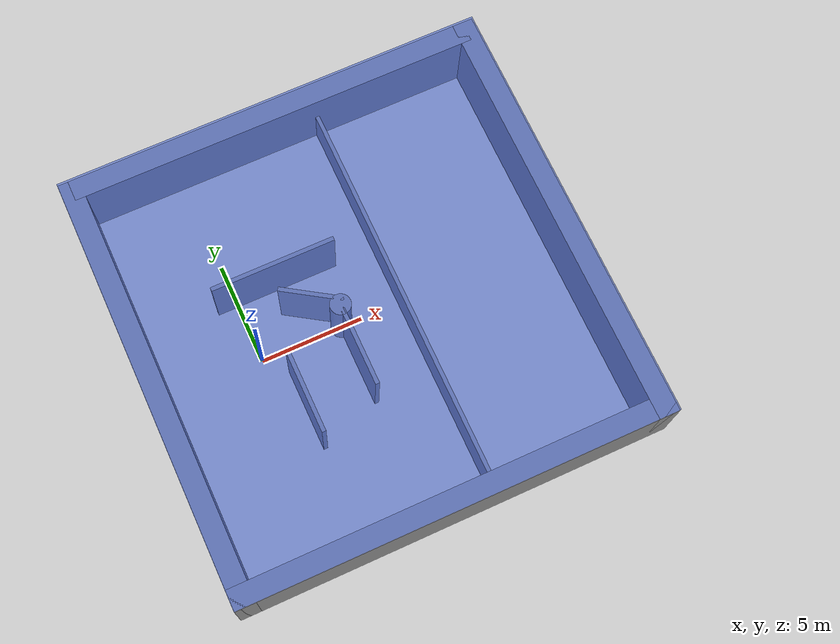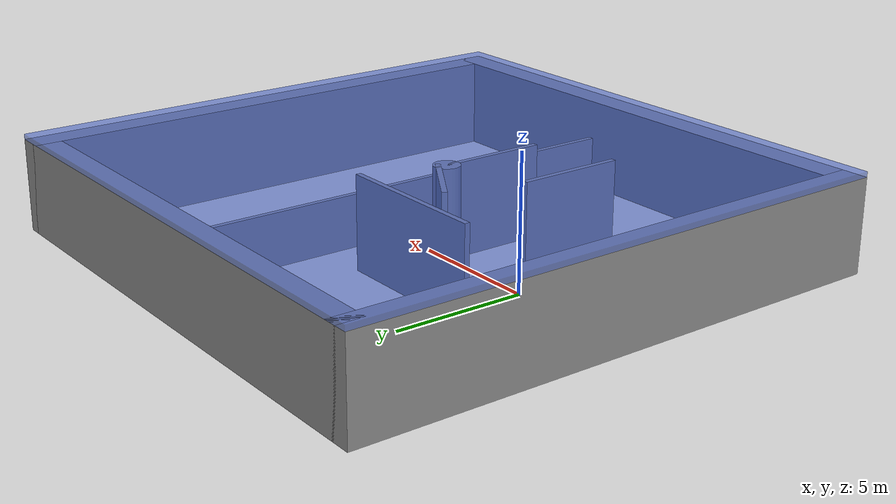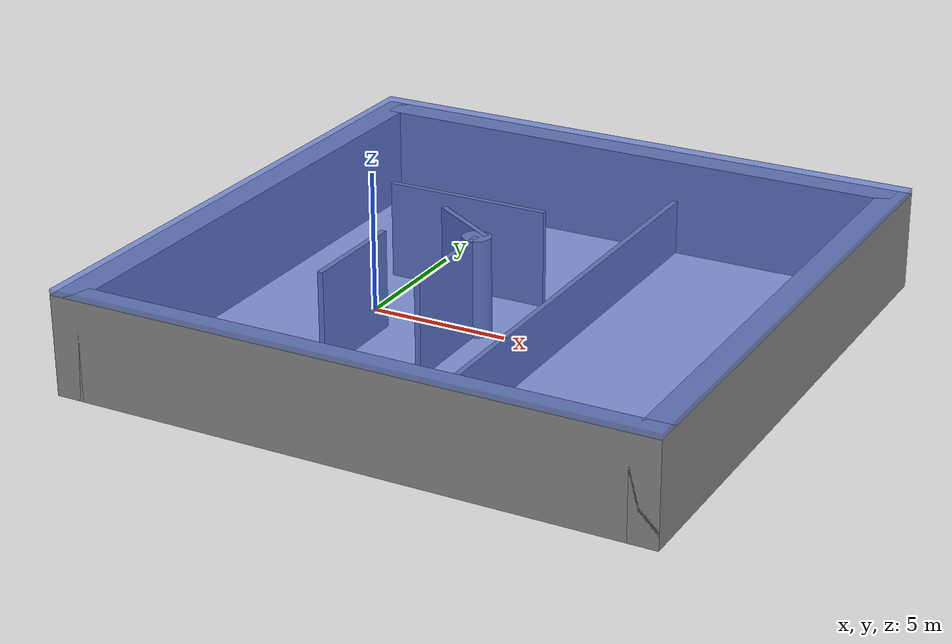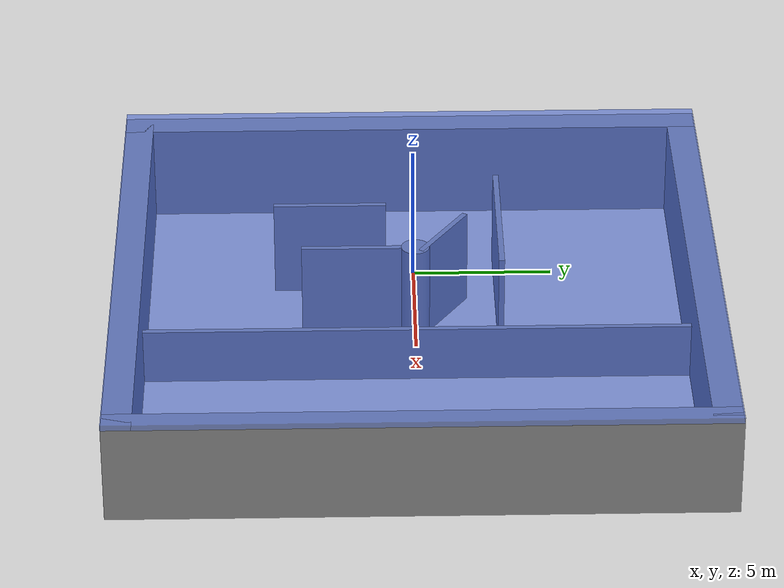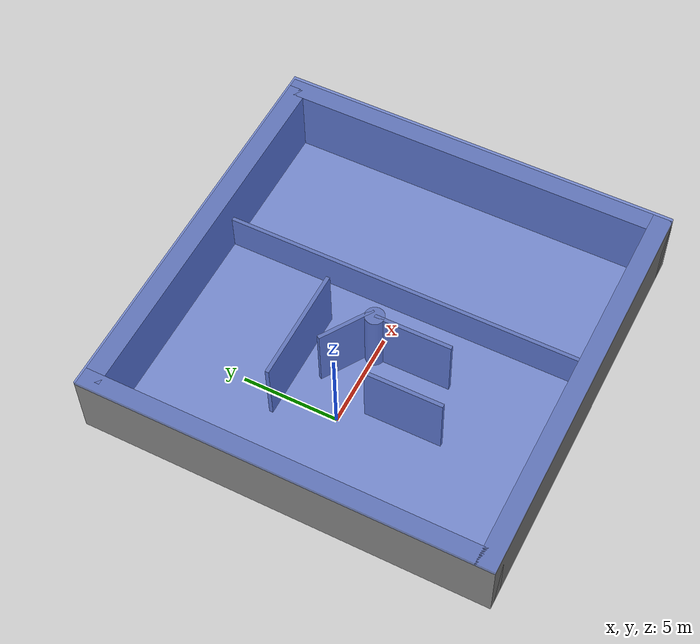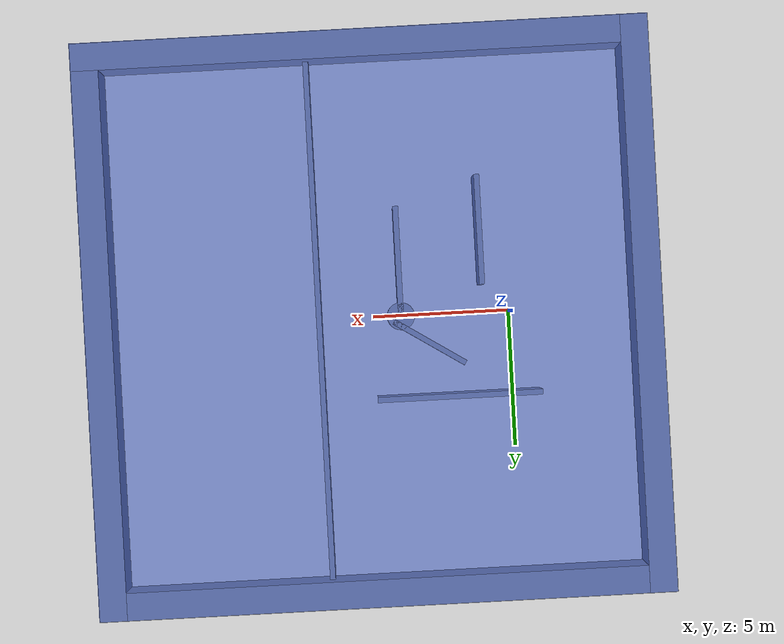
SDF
<?xml version="1.0" ?>
<sdf version="1.4">
  <world name="default">
    <include>
      <uri>model://sun</uri>
    </include>
    <include>
      <uri>model://occupancy_grid</uri>
      <pose>5 0 0 0.0 0.0 0.0</pose>
    </include>
    <physics type='ode'>
      <ode>
        <solver>
          <type>quick</type>
          <iters>1000</iters>
          <sor>1.3</sor>
        </solver>
        <constraints>
          <cfm>0</cfm>
          <erp>0.2</erp>
          <contact_max_correcting_vel>100</contact_max_correcting_vel>
          <contact_surface_layer>0.001</contact_surface_layer>
        </constraints>
      </ode>
      <max_step_size>0.01</max_step_size>
      <real_time_factor>1</real_time_factor>
      <real_time_update_rate>100</real_time_update_rate>
      <gravity>0 0 -9.8</gravity>
    </physics>
  </world>
</sdf>

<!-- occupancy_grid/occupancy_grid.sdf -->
<sdf version='1.4'>
  <model name='occupancy_grid'>
    <link name='Ceiling'>
      <collision name='Ceiling_Collision'>
        <geometry>
          <box>
            <size>21 21 0.2</size>
          </box>
        </geometry>
        <pose>0 0 3.6 0 0 0</pose>
      </collision>
      <visual name='Ceiling_Visual'>
        <pose>0 0 3.6 0 0 0</pose>
        <geometry>
          <box>
            <size>21 21 0.2</size>
          </box>
        </geometry>
        <material>
          <script>
            <uri>file://media/materials/scripts/gazebo.material</uri>
            <name>Gazebo/BlueTransparent</name>
          </script>
        </material>
      </visual>
      <velocity_decay>
        <linear>0</linear>
        <angular>0</angular>
      </velocity_decay>
      <pose>0 0 0 0 0 0</pose>
    </link>
    <link name='Wall_1'>
      <collision name='Wall_1_Collision'>
        <geometry>
          <box>
            <size>21 1 3.5</size>
          </box>
        </geometry>
        <pose>0 0 1.75 0 0 0</pose>
      </collision>
      <visual name='Wall_1_Visual'>
        <pose>0 0 1.75 0 0 0</pose>
        <geometry>
          <box>
            <size>21 1 3.5</size>
          </box>
        </geometry>
        <material>
          <script>
            <uri>file://media/materials/scripts/gazebo.material</uri>
            <name>Gazebo/Grey</name>
          </script>
        </material>
      </visual>
      <velocity_decay>
        <linear>0</linear>
        <angular>0</angular>
      </velocity_decay>
      <pose>-10 0 0 0 0 -1.5708</pose>
    </link>
    <link name='Wall_2'>
      <collision name='Wall_2_Collision'>
        <geometry>
          <box>
            <size>21 1 3.5</size>
          </box>
        </geometry>
        <pose>0 0 1.75 0 0 0</pose>
      </collision>
      <visual name='Wall_2_Visual'>
        <pose>0 0 1.75 0 0 0</pose>
        <geometry>
          <box>
            <size>21 1 3.5</size>
          </box>
        </geometry>
        <material>
          <script>
            <uri>file://media/materials/scripts/gazebo.material</uri>
            <name>Gazebo/Grey</name>
          </script>
        </material>
      </visual>
      <velocity_decay>
        <linear>0</linear>
        <angular>0</angular>
      </velocity_decay>
      <pose>0 -10 0 0 0 0</pose>
    </link>
    <link name='Wall_3'>
      <collision name='Wall_3_Collision'>
        <geometry>
          <box>
            <size>21 1 3.5</size>
          </box>
        </geometry>
        <pose>0 0 1.75 0 0 0</pose>
      </collision>
      <visual name='Wall_3_Visual'>
        <pose>0 0 1.75 0 0 0</pose>
        <geometry>
          <box>
            <size>21 1 3.5</size>
          </box>
        </geometry>
        <material>
          <script>
            <uri>file://media/materials/scripts/gazebo.material</uri>
            <name>Gazebo/Grey</name>
          </script>
        </material>
      </visual>
      <velocity_decay>
        <linear>0</linear>
        <angular>0</angular>
      </velocity_decay>
      <pose>10 0 0 0 0 1.5708</pose>
    </link>
    <link name='Wall_4'>
      <collision name='Wall_4_Collision'>
        <geometry>
          <box>
            <size>20 1 3.5</size>
          </box>
        </geometry>
        <pose>0 0 1.75 0 0 0</pose>
      </collision>
      <visual name='Wall_4_Visual'>
        <pose>0 0 1.75 0 0 0</pose>
        <geometry>
          <box>
            <size>20 1 3.5</size>
          </box>
        </geometry>
        <material>
          <script>
            <uri>file://media/materials/scripts/gazebo.material</uri>
            <name>Gazebo/Grey</name>
          </script>
        </material>
      </visual>
      <velocity_decay>
        <linear>0</linear>
        <angular>0</angular>
      </velocity_decay>
      <pose>0 10 0 0 0 0</pose>
    </link>
    <link name='Wall_5'>
      <collision name='Wall_5_Collision'>
        <geometry>
          <box>
            <size>0.2 20 2</size>
          </box>
        </geometry>
        <pose>0 0 1 0 0 0</pose>
      </collision>
      <visual name='Wall_5_Visual'>
        <pose>0 0 1 0 0 0</pose>
        <geometry>
          <box>
            <size>0.2 20 2</size>
          </box>
        </geometry>
        <material>
          <script>
            <uri>file://media/materials/scripts/gazebo.material</uri>
            <name>Gazebo/Grey</name>
          </script>
        </material>
      </visual>
      <velocity_decay>
        <linear>0</linear>
        <angular>0</angular>
      </velocity_decay>
      <pose>2 0 0 0 0 0</pose>
    </link>
    <link name='Wall_6'>
      <collision name='Wall_6_Collision'>
        <geometry>
          <box>
            <size>0.2 3 3.5</size>
          </box>
        </geometry>
        <pose>0 0 1.75 0 0 0</pose>
      </collision>
      <visual name='Wall_6_Visual'>
        <pose>0 0 1.75 0 0 0</pose>
        <geometry>
          <box>
            <size>0.2 3 3.5</size>
          </box>
        </geometry>
        <material>
          <script>
            <uri>file://media/materials/scripts/gazebo.material</uri>
            <name>Gazebo/Grey</name>
          </script>
        </material>
      </visual>
      <velocity_decay>
        <linear>0</linear>
        <angular>0</angular>
      </velocity_decay>
      <pose>-2 1 0 0 0 1</pose>
    </link>
    <link name='Wall_7'>
      <collision name='Wall_7_Collision'>
        <geometry>
          <box>
            <size>0.2 4 3.5</size>
          </box>
        </geometry>
        <pose>0 0 1.75 0 0 0</pose>
      </collision>
      <visual name='Wall_7_Visual'>
        <pose>0 0 1.75 0 0 0</pose>
        <geometry>
          <box>
            <size>0.2 4 3.5</size>
          </box>
        </geometry>
        <material>
          <script>
            <uri>file://media/materials/scripts/gazebo.material</uri>
            <name>Gazebo/Grey</name>
          </script>
        </material>
      </visual>
      <velocity_decay>
        <linear>0</linear>
        <angular>0</angular>
      </velocity_decay>
      <pose>-4 -3 0 0 0 0</pose>
    </link>
    <link name='Wall_8'>
      <collision name='Wall_8_Collision'>
        <geometry>
          <box>
            <size>0.2 6 3.5</size>
          </box>
        </geometry>
        <pose>0 0 1.75 0 0 0</pose>
      </collision>
      <visual name='Wall_8_Visual'>
        <pose>0 0 1.75 0 0 0</pose>
        <geometry>
          <box>
            <size>0.2 6 3.5</size>
          </box>
        </geometry>
        <material>
          <script>
            <uri>file://media/materials/scripts/gazebo.material</uri>
            <name>Gazebo/Grey</name>
          </script>
        </material>
      </visual>
      <velocity_decay>
        <linear>0</linear>
        <angular>0</angular>
      </velocity_decay>
      <pose>-3 3 0 0 0 1.57</pose>
    </link>
    <link name='Wall_9'>
      <collision name='Wall_9_Collision'>
        <geometry>
          <box>
            <size>0.2 4 3.5</size>
          </box>
        </geometry>
        <pose>0 0 1.75 0 0 0</pose>
      </collision>
      <visual name='Wall_9_Visual'>
        <pose>0 0 1.75 0 0 0</pose>
        <geometry>
          <box>
            <size>0.2 4 3.5</size>
          </box>
        </geometry>
        <material>
          <script>
            <uri>file://media/materials/scripts/gazebo.material</uri>
            <name>Gazebo/Grey</name>
          </script>
        </material>
      </visual>
      <velocity_decay>
        <linear>0</linear>
        <angular>0</angular>
      </velocity_decay>
      <pose>-1 -2 0 0 0 0</pose>
    </link>
    <link name='Cylinder_1'>
      <collision name='Cylinder_1_Collision'>
        <geometry>
          <cylinder>
            <radius>0.5</radius>
            <length>3.5</length>
          </cylinder>
        </geometry>
        <pose>0 0 1.75 0 0 0</pose>
      </collision>
      <visual name='Cylinder_1_Visual'>
        <pose>0 0 1.75 0 0 0</pose>
        <geometry>
          <cylinder>
            <radius>0.5</radius>
            <length>3.5</length>
          </cylinder>
        </geometry>
        <material>
          <script>
            <uri>file://media/materials/scripts/gazebo.material</uri>
            <name>Gazebo/Grey</name>
          </script>
        </material>
      </visual>
      <velocity_decay>
        <linear>0</linear>
        <angular>0</angular>
      </velocity_decay>
      <pose>-1 0 0 0.0 0.0 0.0</pose>
    </link>
    <static>1</static>
  </model>
</sdf>
